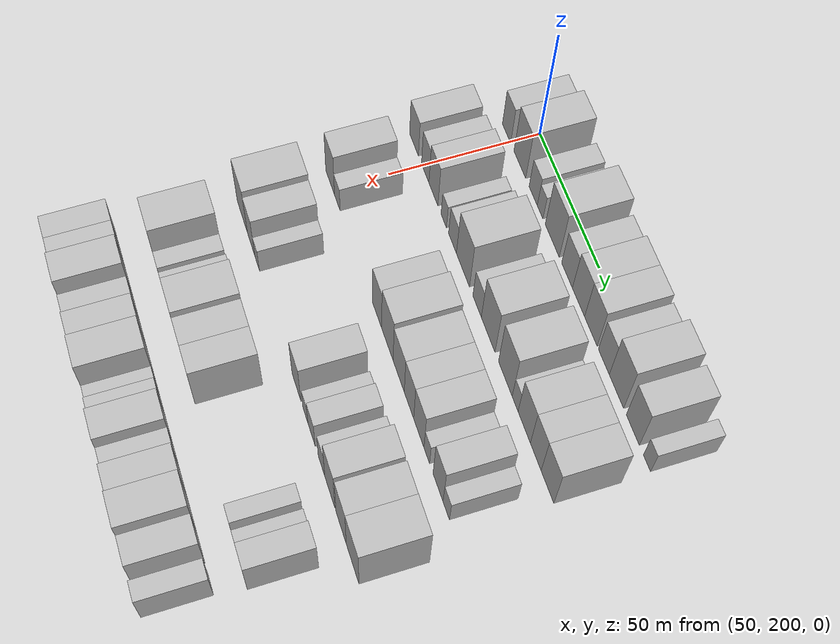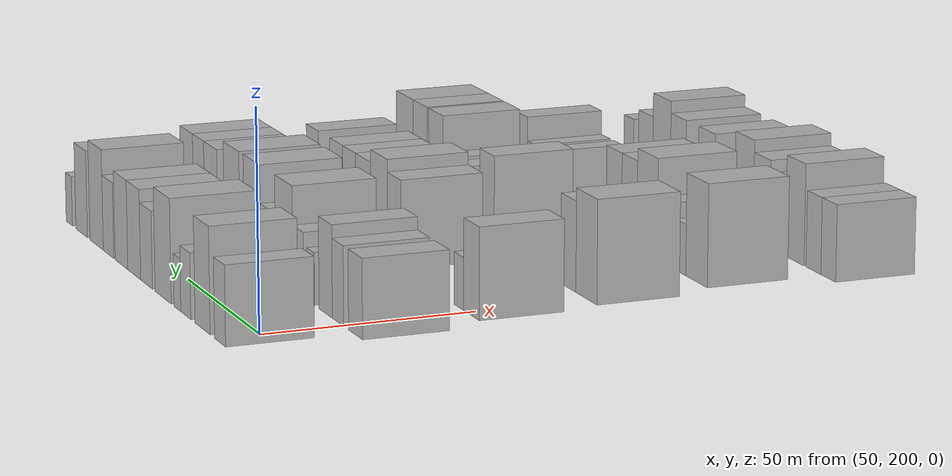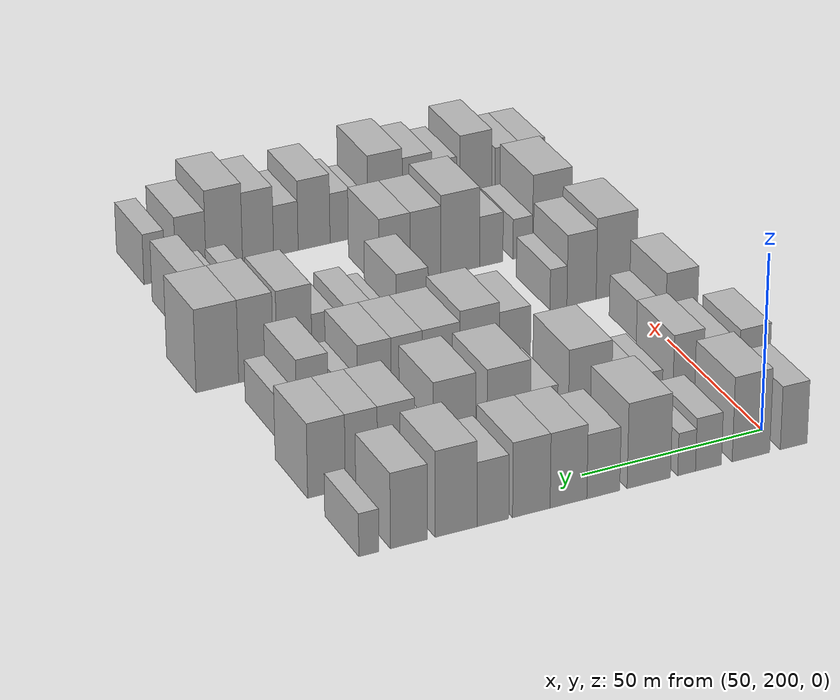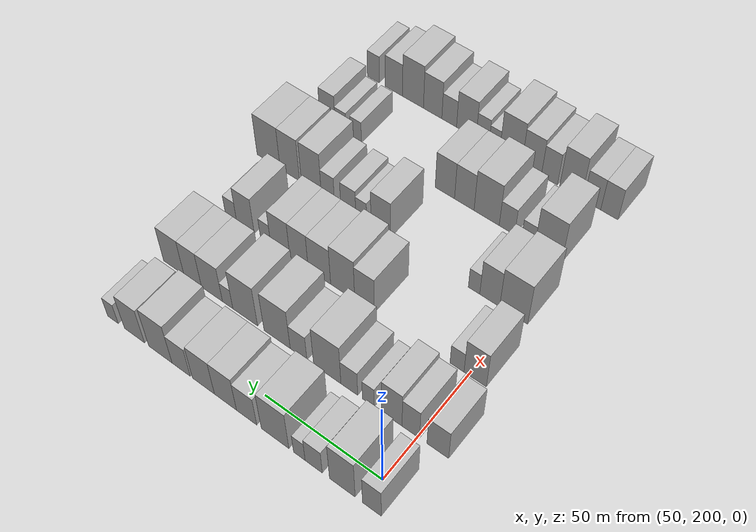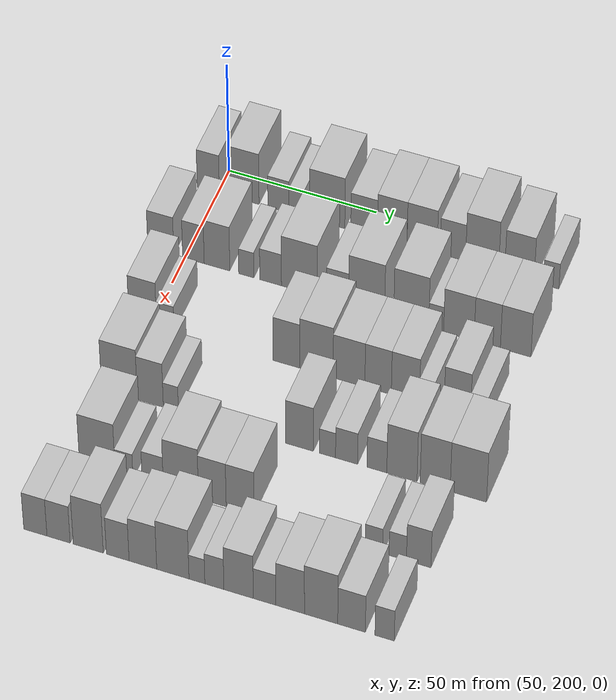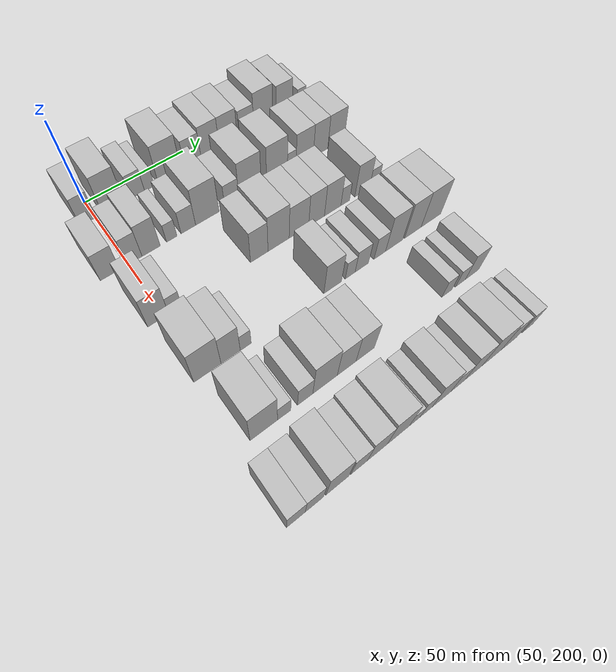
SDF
<sdf version="1.6">
 <world name="default">
  <model name="building_77">
   <static>1</static>
   <pose>50.0000 196.6675 0 0.000000 0.000000 0.000000</pose>
   <link name="link">
    <pose>0 0 9.00 0 0 0</pose>
    <collision name="collision"><geometry><box><size>20.0000 7.5650 18.0000</size></box></geometry></collision>
    <visual name="visual">
     <cast_shadows>0</cast_shadows>
     <geometry><box><size>20.0000 7.5650 18.0000</size></box></geometry>
     <material>
      <script>
       <uri>model://HANNAS_wall/materials/scripts</uri>
       <uri>model://HANNAS_wall/materials/textures</uri>
       <name>vrc/HANNAS_wall</name>
      </script>
     </material>
    </visual>
   </link>
  </model>
  <model name="building_78">
   <static>1</static>
   <pose>50.0000 208.7094 0 0.000000 0.000000 0.000000</pose>
   <link name="link">
    <pose>0 0 12.00 0 0 0</pose>
    <collision name="collision"><geometry><box><size>20.0000 10.5188 24.0000</size></box></geometry></collision>
    <visual name="visual">
     <cast_shadows>0</cast_shadows>
     <geometry><box><size>20.0000 10.5188 24.0000</size></box></geometry>
     <material>
      <script>
       <uri>model://HANNAS_wall/materials/scripts</uri>
       <uri>model://HANNAS_wall/materials/textures</uri>
       <name>vrc/HANNAS_wall</name>
      </script>
     </material>
    </visual>
   </link>
  </model>
  <model name="building_79">
   <static>1</static>
   <pose>50.0000 220.5619 0 0.000000 0.000000 0.000000</pose>
   <link name="link">
    <pose>0 0 7.50 0 0 0</pose>
    <collision name="collision"><geometry><box><size>20.0000 7.1860 15.0000</size></box></geometry></collision>
    <visual name="visual">
     <cast_shadows>0</cast_shadows>
     <geometry><box><size>20.0000 7.1860 15.0000</size></box></geometry>
     <material>
      <script>
       <uri>model://HANNAS_wall/materials/scripts</uri>
       <uri>model://HANNAS_wall/materials/textures</uri>
       <name>vrc/HANNAS_wall</name>
      </script>
     </material>
    </visual>
   </link>
  </model>
  <model name="building_80">
   <static>1</static>
   <pose>50.0000 226.6159 0 0.000000 0.000000 0.000000</pose>
   <link name="link">
    <pose>0 0 6.00 0 0 0</pose>
    <collision name="collision"><geometry><box><size>20.0000 4.9221 12.0000</size></box></geometry></collision>
    <visual name="visual">
     <cast_shadows>0</cast_shadows>
     <geometry><box><size>20.0000 4.9221 12.0000</size></box></geometry>
     <material>
      <script>
       <uri>model://HANNAS_wall/materials/scripts</uri>
       <uri>model://HANNAS_wall/materials/textures</uri>
       <name>vrc/HANNAS_wall</name>
      </script>
     </material>
    </visual>
   </link>
  </model>
  <model name="building_81">
   <static>1</static>
   <pose>50.0000 237.0368 0 0.000000 0.000000 0.000000</pose>
   <link name="link">
    <pose>0 0 12.00 0 0 0</pose>
    <collision name="collision"><geometry><box><size>20.0000 11.9197 24.0000</size></box></geometry></collision>
    <visual name="visual">
     <cast_shadows>0</cast_shadows>
     <geometry><box><size>20.0000 11.9197 24.0000</size></box></geometry>
     <material>
      <script>
       <uri>model://HANNAS_wall/materials/scripts</uri>
       <uri>model://HANNAS_wall/materials/textures</uri>
       <name>vrc/HANNAS_wall</name>
      </script>
     </material>
    </visual>
   </link>
  </model>
  <model name="building_82">
   <static>1</static>
   <pose>50.0000 249.4661 0 0.000000 0.000000 0.000000</pose>
   <link name="link">
    <pose>0 0 9.00 0 0 0</pose>
    <collision name="collision"><geometry><box><size>20.0000 8.9390 18.0000</size></box></geometry></collision>
    <visual name="visual">
     <cast_shadows>0</cast_shadows>
     <geometry><box><size>20.0000 8.9390 18.0000</size></box></geometry>
     <material>
      <script>
       <uri>model://HANNAS_wall/materials/scripts</uri>
       <uri>model://HANNAS_wall/materials/textures</uri>
       <name>vrc/HANNAS_wall</name>
      </script>
     </material>
    </visual>
   </link>
  </model>
  <model name="building_83">
   <static>1</static>
   <pose>50.0000 258.8925 0 0.000000 0.000000 0.000000</pose>
   <link name="link">
    <pose>0 0 10.50 0 0 0</pose>
    <collision name="collision"><geometry><box><size>20.0000 9.9138 21.0000</size></box></geometry></collision>
    <visual name="visual">
     <cast_shadows>0</cast_shadows>
     <geometry><box><size>20.0000 9.9138 21.0000</size></box></geometry>
     <material>
      <script>
       <uri>model://HANNAS_wall/materials/scripts</uri>
       <uri>model://HANNAS_wall/materials/textures</uri>
       <name>vrc/HANNAS_wall</name>
      </script>
     </material>
    </visual>
   </link>
  </model>
  <model name="building_84">
   <static>1</static>
   <pose>50.0000 268.8792 0 0.000000 0.000000 0.000000</pose>
   <link name="link">
    <pose>0 0 10.50 0 0 0</pose>
    <collision name="collision"><geometry><box><size>20.0000 10.0595 21.0000</size></box></geometry></collision>
    <visual name="visual">
     <cast_shadows>0</cast_shadows>
     <geometry><box><size>20.0000 10.0595 21.0000</size></box></geometry>
     <material>
      <script>
       <uri>model://HANNAS_wall/materials/scripts</uri>
       <uri>model://HANNAS_wall/materials/textures</uri>
       <name>vrc/HANNAS_wall</name>
      </script>
     </material>
    </visual>
   </link>
  </model>
  <model name="building_85">
   <static>1</static>
   <pose>50.0000 279.1428 0 0.000000 0.000000 0.000000</pose>
   <link name="link">
    <pose>0 0 9.00 0 0 0</pose>
    <collision name="collision"><geometry><box><size>20.0000 8.4677 18.0000</size></box></geometry></collision>
    <visual name="visual">
     <cast_shadows>0</cast_shadows>
     <geometry><box><size>20.0000 8.4677 18.0000</size></box></geometry>
     <material>
      <script>
       <uri>model://HANNAS_wall/materials/scripts</uri>
       <uri>model://HANNAS_wall/materials/textures</uri>
       <name>vrc/HANNAS_wall</name>
      </script>
     </material>
    </visual>
   </link>
  </model>
  <model name="building_86">
   <static>1</static>
   <pose>50.0000 288.8839 0 0.000000 0.000000 0.000000</pose>
   <link name="link">
    <pose>0 0 12.00 0 0 0</pose>
    <collision name="collision"><geometry><box><size>20.0000 11.0144 24.0000</size></box></geometry></collision>
    <visual name="visual">
     <cast_shadows>0</cast_shadows>
     <geometry><box><size>20.0000 11.0144 24.0000</size></box></geometry>
     <material>
      <script>
       <uri>model://HANNAS_wall/materials/scripts</uri>
       <uri>model://HANNAS_wall/materials/textures</uri>
       <name>vrc/HANNAS_wall</name>
      </script>
     </material>
    </visual>
   </link>
  </model>
  <model name="building_87">
   <static>1</static>
   <pose>50.0000 301.2578 0 0.000000 0.000000 0.000000</pose>
   <link name="link">
    <pose>0 0 10.50 0 0 0</pose>
    <collision name="collision"><geometry><box><size>20.0000 9.7333 21.0000</size></box></geometry></collision>
    <visual name="visual">
     <cast_shadows>0</cast_shadows>
     <geometry><box><size>20.0000 9.7333 21.0000</size></box></geometry>
     <material>
      <script>
       <uri>model://HANNAS_wall/materials/scripts</uri>
       <uri>model://HANNAS_wall/materials/textures</uri>
       <name>vrc/HANNAS_wall</name>
      </script>
     </material>
    </visual>
   </link>
  </model>
  <model name="building_88">
   <static>1</static>
   <pose>50.0000 311.7226 0 0.000000 0.000000 0.000000</pose>
   <link name="link">
    <pose>0 0 6.00 0 0 0</pose>
    <collision name="collision"><geometry><box><size>20.0000 5.1963 12.0000</size></box></geometry></collision>
    <visual name="visual">
     <cast_shadows>0</cast_shadows>
     <geometry><box><size>20.0000 5.1963 12.0000</size></box></geometry>
     <material>
      <script>
       <uri>model://HANNAS_wall/materials/scripts</uri>
       <uri>model://HANNAS_wall/materials/textures</uri>
       <name>vrc/HANNAS_wall</name>
      </script>
     </material>
    </visual>
   </link>
  </model>
  <model name="building_186">
   <static>1</static>
   <pose>79.0000 191.8673 0 0.000000 0.000000 0.000000</pose>
   <link name="link">
    <pose>0 0 9.00 0 0 0</pose>
    <collision name="collision"><geometry><box><size>20.0000 8.7973 18.0000</size></box></geometry></collision>
    <visual name="visual">
     <cast_shadows>0</cast_shadows>
     <geometry><box><size>20.0000 8.7973 18.0000</size></box></geometry>
     <material>
      <script>
       <uri>model://HANNAS_wall/materials/scripts</uri>
       <uri>model://HANNAS_wall/materials/textures</uri>
       <name>vrc/HANNAS_wall</name>
      </script>
     </material>
    </visual>
   </link>
  </model>
  <model name="building_187">
   <static>1</static>
   <pose>79.0000 202.9028 0 0.000000 0.000000 0.000000</pose>
   <link name="link">
    <pose>0 0 9.00 0 0 0</pose>
    <collision name="collision"><geometry><box><size>20.0000 7.2736 18.0000</size></box></geometry></collision>
    <visual name="visual">
     <cast_shadows>0</cast_shadows>
     <geometry><box><size>20.0000 7.2736 18.0000</size></box></geometry>
     <material>
      <script>
       <uri>model://HANNAS_wall/materials/scripts</uri>
       <uri>model://HANNAS_wall/materials/textures</uri>
       <name>vrc/HANNAS_wall</name>
      </script>
     </material>
    </visual>
   </link>
  </model>
  <model name="building_188">
   <static>1</static>
   <pose>79.0000 210.8468 0 0.000000 0.000000 0.000000</pose>
   <link name="link">
    <pose>0 0 10.50 0 0 0</pose>
    <collision name="collision"><geometry><box><size>20.0000 8.6145 21.0000</size></box></geometry></collision>
    <visual name="visual">
     <cast_shadows>0</cast_shadows>
     <geometry><box><size>20.0000 8.6145 21.0000</size></box></geometry>
     <material>
      <script>
       <uri>model://HANNAS_wall/materials/scripts</uri>
       <uri>model://HANNAS_wall/materials/textures</uri>
       <name>vrc/HANNAS_wall</name>
      </script>
     </material>
    </visual>
   </link>
  </model>
  <model name="building_189">
   <static>1</static>
   <pose>79.0000 220.6888 0 0.000000 0.000000 0.000000</pose>
   <link name="link">
    <pose>0 0 6.00 0 0 0</pose>
    <collision name="collision"><geometry><box><size>20.0000 5.0694 12.0000</size></box></geometry></collision>
    <visual name="visual">
     <cast_shadows>0</cast_shadows>
     <geometry><box><size>20.0000 5.0694 12.0000</size></box></geometry>
     <material>
      <script>
       <uri>model://HANNAS_wall/materials/scripts</uri>
       <uri>model://HANNAS_wall/materials/textures</uri>
       <name>vrc/HANNAS_wall</name>
      </script>
     </material>
    </visual>
   </link>
  </model>
  <model name="building_190">
   <static>1</static>
   <pose>79.0000 228.8484 0 0.000000 0.000000 0.000000</pose>
   <link name="link">
    <pose>0 0 7.50 0 0 0</pose>
    <collision name="collision"><geometry><box><size>20.0000 7.2498 15.0000</size></box></geometry></collision>
    <visual name="visual">
     <cast_shadows>0</cast_shadows>
     <geometry><box><size>20.0000 7.2498 15.0000</size></box></geometry>
     <material>
      <script>
       <uri>model://HANNAS_wall/materials/scripts</uri>
       <uri>model://HANNAS_wall/materials/textures</uri>
       <name>vrc/HANNAS_wall</name>
      </script>
     </material>
    </visual>
   </link>
  </model>
  <model name="building_191">
   <static>1</static>
   <pose>79.0000 238.4429 0 0.000000 0.000000 0.000000</pose>
   <link name="link">
    <pose>0 0 12.00 0 0 0</pose>
    <collision name="collision"><geometry><box><size>20.0000 11.9392 24.0000</size></box></geometry></collision>
    <visual name="visual">
     <cast_shadows>0</cast_shadows>
     <geometry><box><size>20.0000 11.9392 24.0000</size></box></geometry>
     <material>
      <script>
       <uri>model://HANNAS_wall/materials/scripts</uri>
       <uri>model://HANNAS_wall/materials/textures</uri>
       <name>vrc/HANNAS_wall</name>
      </script>
     </material>
    </visual>
   </link>
  </model>
  <model name="building_192">
   <static>1</static>
   <pose>79.0000 251.1558 0 0.000000 0.000000 0.000000</pose>
   <link name="link">
    <pose>0 0 7.50 0 0 0</pose>
    <collision name="collision"><geometry><box><size>20.0000 7.4865 15.0000</size></box></geometry></collision>
    <visual name="visual">
     <cast_shadows>0</cast_shadows>
     <geometry><box><size>20.0000 7.4865 15.0000</size></box></geometry>
     <material>
      <script>
       <uri>model://HANNAS_wall/materials/scripts</uri>
       <uri>model://HANNAS_wall/materials/textures</uri>
       <name>vrc/HANNAS_wall</name>
      </script>
     </material>
    </visual>
   </link>
  </model>
  <model name="building_193">
   <static>1</static>
   <pose>79.0000 260.8549 0 0.000000 0.000000 0.000000</pose>
   <link name="link">
    <pose>0 0 12.00 0 0 0</pose>
    <collision name="collision"><geometry><box><size>20.0000 11.9118 24.0000</size></box></geometry></collision>
    <visual name="visual">
     <cast_shadows>0</cast_shadows>
     <geometry><box><size>20.0000 11.9118 24.0000</size></box></geometry>
     <material>
      <script>
       <uri>model://HANNAS_wall/materials/scripts</uri>
       <uri>model://HANNAS_wall/materials/textures</uri>
       <name>vrc/HANNAS_wall</name>
      </script>
     </material>
    </visual>
   </link>
  </model>
  <model name="building_194">
   <static>1</static>
   <pose>79.0000 275.5771 0 0.000000 0.000000 0.000000</pose>
   <link name="link">
    <pose>0 0 12.00 0 0 0</pose>
    <collision name="collision"><geometry><box><size>20.0000 11.5325 24.0000</size></box></geometry></collision>
    <visual name="visual">
     <cast_shadows>0</cast_shadows>
     <geometry><box><size>20.0000 11.5325 24.0000</size></box></geometry>
     <material>
      <script>
       <uri>model://HANNAS_wall/materials/scripts</uri>
       <uri>model://HANNAS_wall/materials/textures</uri>
       <name>vrc/HANNAS_wall</name>
      </script>
     </material>
    </visual>
   </link>
  </model>
  <model name="building_195">
   <static>1</static>
   <pose>79.0000 283.7994 0 0.000000 0.000000 0.000000</pose>
   <link name="link">
    <pose>0 0 6.00 0 0 0</pose>
    <collision name="collision"><geometry><box><size>20.0000 4.9121 12.0000</size></box></geometry></collision>
    <visual name="visual">
     <cast_shadows>0</cast_shadows>
     <geometry><box><size>20.0000 4.9121 12.0000</size></box></geometry>
     <material>
      <script>
       <uri>model://HANNAS_wall/materials/scripts</uri>
       <uri>model://HANNAS_wall/materials/textures</uri>
       <name>vrc/HANNAS_wall</name>
      </script>
     </material>
    </visual>
   </link>
  </model>
  <model name="building_196">
   <static>1</static>
   <pose>79.0000 291.2741 0 0.000000 0.000000 0.000000</pose>
   <link name="link">
    <pose>0 0 10.50 0 0 0</pose>
    <collision name="collision"><geometry><box><size>20.0000 10.0374 21.0000</size></box></geometry></collision>
    <visual name="visual">
     <cast_shadows>0</cast_shadows>
     <geometry><box><size>20.0000 10.0374 21.0000</size></box></geometry>
     <material>
      <script>
       <uri>model://HANNAS_wall/materials/scripts</uri>
       <uri>model://HANNAS_wall/materials/textures</uri>
       <name>vrc/HANNAS_wall</name>
      </script>
     </material>
    </visual>
   </link>
  </model>
  <model name="building_197">
   <static>1</static>
   <pose>79.0000 300.5953 0 0.000000 0.000000 0.000000</pose>
   <link name="link">
    <pose>0 0 10.50 0 0 0</pose>
    <collision name="collision"><geometry><box><size>20.0000 8.6050 21.0000</size></box></geometry></collision>
    <visual name="visual">
     <cast_shadows>0</cast_shadows>
     <geometry><box><size>20.0000 8.6050 21.0000</size></box></geometry>
     <material>
      <script>
       <uri>model://HANNAS_wall/materials/scripts</uri>
       <uri>model://HANNAS_wall/materials/textures</uri>
       <name>vrc/HANNAS_wall</name>
      </script>
     </material>
    </visual>
   </link>
  </model>
  <model name="building_198">
   <static>1</static>
   <pose>79.0000 309.8925 0 0.000000 0.000000 0.000000</pose>
   <link name="link">
    <pose>0 0 10.50 0 0 0</pose>
    <collision name="collision"><geometry><box><size>20.0000 9.9894 21.0000</size></box></geometry></collision>
    <visual name="visual">
     <cast_shadows>0</cast_shadows>
     <geometry><box><size>20.0000 9.9894 21.0000</size></box></geometry>
     <material>
      <script>
       <uri>model://HANNAS_wall/materials/scripts</uri>
       <uri>model://HANNAS_wall/materials/textures</uri>
       <name>vrc/HANNAS_wall</name>
      </script>
     </material>
    </visual>
   </link>
  </model>
  <model name="building_302">
   <static>1</static>
   <pose>108.0000 197.2873 0 0.000000 0.000000 0.000000</pose>
   <link name="link">
    <pose>0 0 10.50 0 0 0</pose>
    <collision name="collision"><geometry><box><size>20.0000 9.2643 21.0000</size></box></geometry></collision>
    <visual name="visual">
     <cast_shadows>0</cast_shadows>
     <geometry><box><size>20.0000 9.2643 21.0000</size></box></geometry>
     <material>
      <script>
       <uri>model://HANNAS_wall/materials/scripts</uri>
       <uri>model://HANNAS_wall/materials/textures</uri>
       <name>vrc/HANNAS_wall</name>
      </script>
     </material>
    </visual>
   </link>
  </model>
  <model name="building_303">
   <static>1</static>
   <pose>108.0000 204.8573 0 0.000000 0.000000 0.000000</pose>
   <link name="link">
    <pose>0 0 6.00 0 0 0</pose>
    <collision name="collision"><geometry><box><size>20.0000 5.8758 12.0000</size></box></geometry></collision>
    <visual name="visual">
     <cast_shadows>0</cast_shadows>
     <geometry><box><size>20.0000 5.8758 12.0000</size></box></geometry>
     <material>
      <script>
       <uri>model://HANNAS_wall/materials/scripts</uri>
       <uri>model://HANNAS_wall/materials/textures</uri>
       <name>vrc/HANNAS_wall</name>
      </script>
     </material>
    </visual>
   </link>
  </model>
  <model name="building_304">
   <static>1</static>
   <pose>108.0000 245.0341 0 0.000000 0.000000 0.000000</pose>
   <link name="link">
    <pose>0 0 10.50 0 0 0</pose>
    <collision name="collision"><geometry><box><size>20.0000 8.8259 21.0000</size></box></geometry></collision>
    <visual name="visual">
     <cast_shadows>0</cast_shadows>
     <geometry><box><size>20.0000 8.8259 21.0000</size></box></geometry>
     <material>
      <script>
       <uri>model://HANNAS_wall/materials/scripts</uri>
       <uri>model://HANNAS_wall/materials/textures</uri>
       <name>vrc/HANNAS_wall</name>
      </script>
     </material>
    </visual>
   </link>
  </model>
  <model name="building_305">
   <static>1</static>
   <pose>108.0000 254.9267 0 0.000000 0.000000 0.000000</pose>
   <link name="link">
    <pose>0 0 12.00 0 0 0</pose>
    <collision name="collision"><geometry><box><size>20.0000 10.9592 24.0000</size></box></geometry></collision>
    <visual name="visual">
     <cast_shadows>0</cast_shadows>
     <geometry><box><size>20.0000 10.9592 24.0000</size></box></geometry>
     <material>
      <script>
       <uri>model://HANNAS_wall/materials/scripts</uri>
       <uri>model://HANNAS_wall/materials/textures</uri>
       <name>vrc/HANNAS_wall</name>
      </script>
     </material>
    </visual>
   </link>
  </model>
  <model name="building_306">
   <static>1</static>
   <pose>108.0000 265.6005 0 0.000000 0.000000 0.000000</pose>
   <link name="link">
    <pose>0 0 10.50 0 0 0</pose>
    <collision name="collision"><geometry><box><size>20.0000 10.3884 21.0000</size></box></geometry></collision>
    <visual name="visual">
     <cast_shadows>0</cast_shadows>
     <geometry><box><size>20.0000 10.3884 21.0000</size></box></geometry>
     <material>
      <script>
       <uri>model://HANNAS_wall/materials/scripts</uri>
       <uri>model://HANNAS_wall/materials/textures</uri>
       <name>vrc/HANNAS_wall</name>
      </script>
     </material>
    </visual>
   </link>
  </model>
  <model name="building_307">
   <static>1</static>
   <pose>108.0000 275.1124 0 0.000000 0.000000 0.000000</pose>
   <link name="link">
    <pose>0 0 10.50 0 0 0</pose>
    <collision name="collision"><geometry><box><size>20.0000 8.6356 21.0000</size></box></geometry></collision>
    <visual name="visual">
     <cast_shadows>0</cast_shadows>
     <geometry><box><size>20.0000 8.6356 21.0000</size></box></geometry>
     <material>
      <script>
       <uri>model://HANNAS_wall/materials/scripts</uri>
       <uri>model://HANNAS_wall/materials/textures</uri>
       <name>vrc/HANNAS_wall</name>
      </script>
     </material>
    </visual>
   </link>
  </model>
  <model name="building_308">
   <static>1</static>
   <pose>108.0000 284.0122 0 0.000000 0.000000 0.000000</pose>
   <link name="link">
    <pose>0 0 10.50 0 0 0</pose>
    <collision name="collision"><geometry><box><size>20.0000 9.1639 21.0000</size></box></geometry></collision>
    <visual name="visual">
     <cast_shadows>0</cast_shadows>
     <geometry><box><size>20.0000 9.1639 21.0000</size></box></geometry>
     <material>
      <script>
       <uri>model://HANNAS_wall/materials/scripts</uri>
       <uri>model://HANNAS_wall/materials/textures</uri>
       <name>vrc/HANNAS_wall</name>
      </script>
     </material>
    </visual>
   </link>
  </model>
  <model name="building_309">
   <static>1</static>
   <pose>108.0000 291.0864 0 0.000000 0.000000 0.000000</pose>
   <link name="link">
    <pose>0 0 6.00 0 0 0</pose>
    <collision name="collision"><geometry><box><size>20.0000 4.9846 12.0000</size></box></geometry></collision>
    <visual name="visual">
     <cast_shadows>0</cast_shadows>
     <geometry><box><size>20.0000 4.9846 12.0000</size></box></geometry>
     <material>
      <script>
       <uri>model://HANNAS_wall/materials/scripts</uri>
       <uri>model://HANNAS_wall/materials/textures</uri>
       <name>vrc/HANNAS_wall</name>
      </script>
     </material>
    </visual>
   </link>
  </model>
  <model name="building_310">
   <static>1</static>
   <pose>108.0000 300.8844 0 0.000000 0.000000 0.000000</pose>
   <link name="link">
    <pose>0 0 10.50 0 0 0</pose>
    <collision name="collision"><geometry><box><size>20.0000 8.6115 21.0000</size></box></geometry></collision>
    <visual name="visual">
     <cast_shadows>0</cast_shadows>
     <geometry><box><size>20.0000 8.6115 21.0000</size></box></geometry>
     <material>
      <script>
       <uri>model://HANNAS_wall/materials/scripts</uri>
       <uri>model://HANNAS_wall/materials/textures</uri>
       <name>vrc/HANNAS_wall</name>
      </script>
     </material>
    </visual>
   </link>
  </model>
  <model name="building_311">
   <static>1</static>
   <pose>108.0000 307.9476 0 0.000000 0.000000 0.000000</pose>
   <link name="link">
    <pose>0 0 6.00 0 0 0</pose>
    <collision name="collision"><geometry><box><size>20.0000 5.5149 12.0000</size></box></geometry></collision>
    <visual name="visual">
     <cast_shadows>0</cast_shadows>
     <geometry><box><size>20.0000 5.5149 12.0000</size></box></geometry>
     <material>
      <script>
       <uri>model://HANNAS_wall/materials/scripts</uri>
       <uri>model://HANNAS_wall/materials/textures</uri>
       <name>vrc/HANNAS_wall</name>
      </script>
     </material>
    </visual>
   </link>
  </model>
  <model name="building_414">
   <static>1</static>
   <pose>137.0000 201.0988 0 0.000000 0.000000 0.000000</pose>
   <link name="link">
    <pose>0 0 12.00 0 0 0</pose>
    <collision name="collision"><geometry><box><size>20.0000 11.8479 24.0000</size></box></geometry></collision>
    <visual name="visual">
     <cast_shadows>0</cast_shadows>
     <geometry><box><size>20.0000 11.8479 24.0000</size></box></geometry>
     <material>
      <script>
       <uri>model://HANNAS_wall/materials/scripts</uri>
       <uri>model://HANNAS_wall/materials/textures</uri>
       <name>vrc/HANNAS_wall</name>
      </script>
     </material>
    </visual>
   </link>
  </model>
  <model name="building_415">
   <static>1</static>
   <pose>137.0000 211.3151 0 0.000000 0.000000 0.000000</pose>
   <link name="link">
    <pose>0 0 10.50 0 0 0</pose>
    <collision name="collision"><geometry><box><size>20.0000 8.5848 21.0000</size></box></geometry></collision>
    <visual name="visual">
     <cast_shadows>0</cast_shadows>
     <geometry><box><size>20.0000 8.5848 21.0000</size></box></geometry>
     <material>
      <script>
       <uri>model://HANNAS_wall/materials/scripts</uri>
       <uri>model://HANNAS_wall/materials/textures</uri>
       <name>vrc/HANNAS_wall</name>
      </script>
     </material>
    </visual>
   </link>
  </model>
  <model name="building_416">
   <static>1</static>
   <pose>137.0000 218.0904 0 0.000000 0.000000 0.000000</pose>
   <link name="link">
    <pose>0 0 6.00 0 0 0</pose>
    <collision name="collision"><geometry><box><size>20.0000 4.9657 12.0000</size></box></geometry></collision>
    <visual name="visual">
     <cast_shadows>0</cast_shadows>
     <geometry><box><size>20.0000 4.9657 12.0000</size></box></geometry>
     <material>
      <script>
       <uri>model://HANNAS_wall/materials/scripts</uri>
       <uri>model://HANNAS_wall/materials/textures</uri>
       <name>vrc/HANNAS_wall</name>
      </script>
     </material>
    </visual>
   </link>
  </model>
  <model name="building_417">
   <static>1</static>
   <pose>137.0000 260.1597 0 0.000000 0.000000 0.000000</pose>
   <link name="link">
    <pose>0 0 10.50 0 0 0</pose>
    <collision name="collision"><geometry><box><size>20.0000 9.0576 21.0000</size></box></geometry></collision>
    <visual name="visual">
     <cast_shadows>0</cast_shadows>
     <geometry><box><size>20.0000 9.0576 21.0000</size></box></geometry>
     <material>
      <script>
       <uri>model://HANNAS_wall/materials/scripts</uri>
       <uri>model://HANNAS_wall/materials/textures</uri>
       <name>vrc/HANNAS_wall</name>
      </script>
     </material>
    </visual>
   </link>
  </model>
  <model name="building_418">
   <static>1</static>
   <pose>137.0000 269.2691 0 0.000000 0.000000 0.000000</pose>
   <link name="link">
    <pose>0 0 6.00 0 0 0</pose>
    <collision name="collision"><geometry><box><size>20.0000 5.1611 12.0000</size></box></geometry></collision>
    <visual name="visual">
     <cast_shadows>0</cast_shadows>
     <geometry><box><size>20.0000 5.1611 12.0000</size></box></geometry>
     <material>
      <script>
       <uri>model://HANNAS_wall/materials/scripts</uri>
       <uri>model://HANNAS_wall/materials/textures</uri>
       <name>vrc/HANNAS_wall</name>
      </script>
     </material>
    </visual>
   </link>
  </model>
  <model name="building_419">
   <static>1</static>
   <pose>137.0000 275.4304 0 0.000000 0.000000 0.000000</pose>
   <link name="link">
    <pose>0 0 7.50 0 0 0</pose>
    <collision name="collision"><geometry><box><size>20.0000 7.1615 15.0000</size></box></geometry></collision>
    <visual name="visual">
     <cast_shadows>0</cast_shadows>
     <geometry><box><size>20.0000 7.1615 15.0000</size></box></geometry>
     <material>
      <script>
       <uri>model://HANNAS_wall/materials/scripts</uri>
       <uri>model://HANNAS_wall/materials/textures</uri>
       <name>vrc/HANNAS_wall</name>
      </script>
     </material>
    </visual>
   </link>
  </model>
  <model name="building_420">
   <static>1</static>
   <pose>137.0000 285.2051 0 0.000000 0.000000 0.000000</pose>
   <link name="link">
    <pose>0 0 7.50 0 0 0</pose>
    <collision name="collision"><geometry><box><size>20.0000 6.3879 15.0000</size></box></geometry></collision>
    <visual name="visual">
     <cast_shadows>0</cast_shadows>
     <geometry><box><size>20.0000 6.3879 15.0000</size></box></geometry>
     <material>
      <script>
       <uri>model://HANNAS_wall/materials/scripts</uri>
       <uri>model://HANNAS_wall/materials/textures</uri>
       <name>vrc/HANNAS_wall</name>
      </script>
     </material>
    </visual>
   </link>
  </model>
  <model name="building_421">
   <static>1</static>
   <pose>137.0000 293.2575 0 0.000000 0.000000 0.000000</pose>
   <link name="link">
    <pose>0 0 12.00 0 0 0</pose>
    <collision name="collision"><geometry><box><size>20.0000 9.7169 24.0000</size></box></geometry></collision>
    <visual name="visual">
     <cast_shadows>0</cast_shadows>
     <geometry><box><size>20.0000 9.7169 24.0000</size></box></geometry>
     <material>
      <script>
       <uri>model://HANNAS_wall/materials/scripts</uri>
       <uri>model://HANNAS_wall/materials/textures</uri>
       <name>vrc/HANNAS_wall</name>
      </script>
     </material>
    </visual>
   </link>
  </model>
  <model name="building_422">
   <static>1</static>
   <pose>137.0000 303.9200 0 0.000000 0.000000 0.000000</pose>
   <link name="link">
    <pose>0 0 12.00 0 0 0</pose>
    <collision name="collision"><geometry><box><size>20.0000 9.6080 24.0000</size></box></geometry></collision>
    <visual name="visual">
     <cast_shadows>0</cast_shadows>
     <geometry><box><size>20.0000 9.6080 24.0000</size></box></geometry>
     <material>
      <script>
       <uri>model://HANNAS_wall/materials/scripts</uri>
       <uri>model://HANNAS_wall/materials/textures</uri>
       <name>vrc/HANNAS_wall</name>
      </script>
     </material>
    </visual>
   </link>
  </model>
  <model name="building_423">
   <static>1</static>
   <pose>137.0000 314.5511 0 0.000000 0.000000 0.000000</pose>
   <link name="link">
    <pose>0 0 12.00 0 0 0</pose>
    <collision name="collision"><geometry><box><size>20.0000 11.6543 24.0000</size></box></geometry></collision>
    <visual name="visual">
     <cast_shadows>0</cast_shadows>
     <geometry><box><size>20.0000 11.6543 24.0000</size></box></geometry>
     <material>
      <script>
       <uri>model://HANNAS_wall/materials/scripts</uri>
       <uri>model://HANNAS_wall/materials/textures</uri>
       <name>vrc/HANNAS_wall</name>
      </script>
     </material>
    </visual>
   </link>
  </model>
  <model name="building_526">
   <static>1</static>
   <pose>166.0000 205.5373 0 0.000000 0.000000 0.000000</pose>
   <link name="link">
    <pose>0 0 12.00 0 0 0</pose>
    <collision name="collision"><geometry><box><size>20.0000 11.6668 24.0000</size></box></geometry></collision>
    <visual name="visual">
     <cast_shadows>0</cast_shadows>
     <geometry><box><size>20.0000 11.6668 24.0000</size></box></geometry>
     <material>
      <script>
       <uri>model://HANNAS_wall/materials/scripts</uri>
       <uri>model://HANNAS_wall/materials/textures</uri>
       <name>vrc/HANNAS_wall</name>
      </script>
     </material>
    </visual>
   </link>
  </model>
  <model name="building_527">
   <static>1</static>
   <pose>166.0000 214.2726 0 0.000000 0.000000 0.000000</pose>
   <link name="link">
    <pose>0 0 6.00 0 0 0</pose>
    <collision name="collision"><geometry><box><size>20.0000 5.8038 12.0000</size></box></geometry></collision>
    <visual name="visual">
     <cast_shadows>0</cast_shadows>
     <geometry><box><size>20.0000 5.8038 12.0000</size></box></geometry>
     <material>
      <script>
       <uri>model://HANNAS_wall/materials/scripts</uri>
       <uri>model://HANNAS_wall/materials/textures</uri>
       <name>vrc/HANNAS_wall</name>
      </script>
     </material>
    </visual>
   </link>
  </model>
  <model name="building_528">
   <static>1</static>
   <pose>166.0000 223.6195 0 0.000000 0.000000 0.000000</pose>
   <link name="link">
    <pose>0 0 7.50 0 0 0</pose>
    <collision name="collision"><geometry><box><size>20.0000 6.8901 15.0000</size></box></geometry></collision>
    <visual name="visual">
     <cast_shadows>0</cast_shadows>
     <geometry><box><size>20.0000 6.8901 15.0000</size></box></geometry>
     <material>
      <script>
       <uri>model://HANNAS_wall/materials/scripts</uri>
       <uri>model://HANNAS_wall/materials/textures</uri>
       <name>vrc/HANNAS_wall</name>
      </script>
     </material>
    </visual>
   </link>
  </model>
  <model name="building_529">
   <static>1</static>
   <pose>166.0000 232.7577 0 0.000000 0.000000 0.000000</pose>
   <link name="link">
    <pose>0 0 12.00 0 0 0</pose>
    <collision name="collision"><geometry><box><size>20.0000 11.3863 24.0000</size></box></geometry></collision>
    <visual name="visual">
     <cast_shadows>0</cast_shadows>
     <geometry><box><size>20.0000 11.3863 24.0000</size></box></geometry>
     <material>
      <script>
       <uri>model://HANNAS_wall/materials/scripts</uri>
       <uri>model://HANNAS_wall/materials/textures</uri>
       <name>vrc/HANNAS_wall</name>
      </script>
     </material>
    </visual>
   </link>
  </model>
  <model name="building_530">
   <static>1</static>
   <pose>166.0000 242.9270 0 0.000000 0.000000 0.000000</pose>
   <link name="link">
    <pose>0 0 10.50 0 0 0</pose>
    <collision name="collision"><geometry><box><size>20.0000 8.9524 21.0000</size></box></geometry></collision>
    <visual name="visual">
     <cast_shadows>0</cast_shadows>
     <geometry><box><size>20.0000 8.9524 21.0000</size></box></geometry>
     <material>
      <script>
       <uri>model://HANNAS_wall/materials/scripts</uri>
       <uri>model://HANNAS_wall/materials/textures</uri>
       <name>vrc/HANNAS_wall</name>
      </script>
     </material>
    </visual>
   </link>
  </model>
  <model name="building_531">
   <static>1</static>
   <pose>166.0000 251.9054 0 0.000000 0.000000 0.000000</pose>
   <link name="link">
    <pose>0 0 10.50 0 0 0</pose>
    <collision name="collision"><geometry><box><size>20.0000 9.0044 21.0000</size></box></geometry></collision>
    <visual name="visual">
     <cast_shadows>0</cast_shadows>
     <geometry><box><size>20.0000 9.0044 21.0000</size></box></geometry>
     <material>
      <script>
       <uri>model://HANNAS_wall/materials/scripts</uri>
       <uri>model://HANNAS_wall/materials/textures</uri>
       <name>vrc/HANNAS_wall</name>
      </script>
     </material>
    </visual>
   </link>
  </model>
  <model name="building_532">
   <static>1</static>
   <pose>166.0000 294.7436 0 0.000000 0.000000 0.000000</pose>
   <link name="link">
    <pose>0 0 6.00 0 0 0</pose>
    <collision name="collision"><geometry><box><size>20.0000 5.5574 12.0000</size></box></geometry></collision>
    <visual name="visual">
     <cast_shadows>0</cast_shadows>
     <geometry><box><size>20.0000 5.5574 12.0000</size></box></geometry>
     <material>
      <script>
       <uri>model://HANNAS_wall/materials/scripts</uri>
       <uri>model://HANNAS_wall/materials/textures</uri>
       <name>vrc/HANNAS_wall</name>
      </script>
     </material>
    </visual>
   </link>
  </model>
  <model name="building_533">
   <static>1</static>
   <pose>166.0000 302.2970 0 0.000000 0.000000 0.000000</pose>
   <link name="link">
    <pose>0 0 6.00 0 0 0</pose>
    <collision name="collision"><geometry><box><size>20.0000 5.5495 12.0000</size></box></geometry></collision>
    <visual name="visual">
     <cast_shadows>0</cast_shadows>
     <geometry><box><size>20.0000 5.5495 12.0000</size></box></geometry>
     <material>
      <script>
       <uri>model://HANNAS_wall/materials/scripts</uri>
       <uri>model://HANNAS_wall/materials/textures</uri>
       <name>vrc/HANNAS_wall</name>
      </script>
     </material>
    </visual>
   </link>
  </model>
  <model name="building_534">
   <static>1</static>
   <pose>166.0000 308.9526 0 0.000000 0.000000 0.000000</pose>
   <link name="link">
    <pose>0 0 9.00 0 0 0</pose>
    <collision name="collision"><geometry><box><size>20.0000 7.7616 18.0000</size></box></geometry></collision>
    <visual name="visual">
     <cast_shadows>0</cast_shadows>
     <geometry><box><size>20.0000 7.7616 18.0000</size></box></geometry>
     <material>
      <script>
       <uri>model://HANNAS_wall/materials/scripts</uri>
       <uri>model://HANNAS_wall/materials/textures</uri>
       <name>vrc/HANNAS_wall</name>
      </script>
     </material>
    </visual>
   </link>
  </model>
  <model name="building_643">
   <static>1</static>
   <pose>195.0000 197.2203 0 0.000000 0.000000 0.000000</pose>
   <link name="link">
    <pose>0 0 9.00 0 0 0</pose>
    <collision name="collision"><geometry><box><size>20.0000 7.5156 18.0000</size></box></geometry></collision>
    <visual name="visual">
     <cast_shadows>0</cast_shadows>
     <geometry><box><size>20.0000 7.5156 18.0000</size></box></geometry>
     <material>
      <script>
       <uri>model://HANNAS_wall/materials/scripts</uri>
       <uri>model://HANNAS_wall/materials/textures</uri>
       <name>vrc/HANNAS_wall</name>
      </script>
     </material>
    </visual>
   </link>
  </model>
  <model name="building_644">
   <static>1</static>
   <pose>195.0000 204.7338 0 0.000000 0.000000 0.000000</pose>
   <link name="link">
    <pose>0 0 9.00 0 0 0</pose>
    <collision name="collision"><geometry><box><size>20.0000 7.5114 18.0000</size></box></geometry></collision>
    <visual name="visual">
     <cast_shadows>0</cast_shadows>
     <geometry><box><size>20.0000 7.5114 18.0000</size></box></geometry>
     <material>
      <script>
       <uri>model://HANNAS_wall/materials/scripts</uri>
       <uri>model://HANNAS_wall/materials/textures</uri>
       <name>vrc/HANNAS_wall</name>
      </script>
     </material>
    </visual>
   </link>
  </model>
  <model name="building_645">
   <static>1</static>
   <pose>195.0000 214.3378 0 0.000000 0.000000 0.000000</pose>
   <link name="link">
    <pose>0 0 12.00 0 0 0</pose>
    <collision name="collision"><geometry><box><size>20.0000 9.6967 24.0000</size></box></geometry></collision>
    <visual name="visual">
     <cast_shadows>0</cast_shadows>
     <geometry><box><size>20.0000 9.6967 24.0000</size></box></geometry>
     <material>
      <script>
       <uri>model://HANNAS_wall/materials/scripts</uri>
       <uri>model://HANNAS_wall/materials/textures</uri>
       <name>vrc/HANNAS_wall</name>
      </script>
     </material>
    </visual>
   </link>
  </model>
  <model name="building_646">
   <static>1</static>
   <pose>195.0000 223.8362 0 0.000000 0.000000 0.000000</pose>
   <link name="link">
    <pose>0 0 9.00 0 0 0</pose>
    <collision name="collision"><geometry><box><size>20.0000 7.3001 18.0000</size></box></geometry></collision>
    <visual name="visual">
     <cast_shadows>0</cast_shadows>
     <geometry><box><size>20.0000 7.3001 18.0000</size></box></geometry>
     <material>
      <script>
       <uri>model://HANNAS_wall/materials/scripts</uri>
       <uri>model://HANNAS_wall/materials/textures</uri>
       <name>vrc/HANNAS_wall</name>
      </script>
     </material>
    </visual>
   </link>
  </model>
  <model name="building_647">
   <static>1</static>
   <pose>195.0000 231.9300 0 0.000000 0.000000 0.000000</pose>
   <link name="link">
    <pose>0 0 10.50 0 0 0</pose>
    <collision name="collision"><geometry><box><size>20.0000 8.8874 21.0000</size></box></geometry></collision>
    <visual name="visual">
     <cast_shadows>0</cast_shadows>
     <geometry><box><size>20.0000 8.8874 21.0000</size></box></geometry>
     <material>
      <script>
       <uri>model://HANNAS_wall/materials/scripts</uri>
       <uri>model://HANNAS_wall/materials/textures</uri>
       <name>vrc/HANNAS_wall</name>
      </script>
     </material>
    </visual>
   </link>
  </model>
  <model name="building_648">
   <static>1</static>
   <pose>195.0000 241.5356 0 0.000000 0.000000 0.000000</pose>
   <link name="link">
    <pose>0 0 12.00 0 0 0</pose>
    <collision name="collision"><geometry><box><size>20.0000 10.3239 24.0000</size></box></geometry></collision>
    <visual name="visual">
     <cast_shadows>0</cast_shadows>
     <geometry><box><size>20.0000 10.3239 24.0000</size></box></geometry>
     <material>
      <script>
       <uri>model://HANNAS_wall/materials/scripts</uri>
       <uri>model://HANNAS_wall/materials/textures</uri>
       <name>vrc/HANNAS_wall</name>
      </script>
     </material>
    </visual>
   </link>
  </model>
  <model name="building_649">
   <static>1</static>
   <pose>195.0000 249.2269 0 0.000000 0.000000 0.000000</pose>
   <link name="link">
    <pose>0 0 6.00 0 0 0</pose>
    <collision name="collision"><geometry><box><size>20.0000 5.0586 12.0000</size></box></geometry></collision>
    <visual name="visual">
     <cast_shadows>0</cast_shadows>
     <geometry><box><size>20.0000 5.0586 12.0000</size></box></geometry>
     <material>
      <script>
       <uri>model://HANNAS_wall/materials/scripts</uri>
       <uri>model://HANNAS_wall/materials/textures</uri>
       <name>vrc/HANNAS_wall</name>
      </script>
     </material>
    </visual>
   </link>
  </model>
  <model name="building_650">
   <static>1</static>
   <pose>195.0000 254.7929 0 0.000000 0.000000 0.000000</pose>
   <link name="link">
    <pose>0 0 7.50 0 0 0</pose>
    <collision name="collision"><geometry><box><size>20.0000 6.0735 15.0000</size></box></geometry></collision>
    <visual name="visual">
     <cast_shadows>0</cast_shadows>
     <geometry><box><size>20.0000 6.0735 15.0000</size></box></geometry>
     <material>
      <script>
       <uri>model://HANNAS_wall/materials/scripts</uri>
       <uri>model://HANNAS_wall/materials/textures</uri>
       <name>vrc/HANNAS_wall</name>
      </script>
     </material>
    </visual>
   </link>
  </model>
  <model name="building_651">
   <static>1</static>
   <pose>195.0000 262.5098 0 0.000000 0.000000 0.000000</pose>
   <link name="link">
    <pose>0 0 10.50 0 0 0</pose>
    <collision name="collision"><geometry><box><size>20.0000 9.3602 21.0000</size></box></geometry></collision>
    <visual name="visual">
     <cast_shadows>0</cast_shadows>
     <geometry><box><size>20.0000 9.3602 21.0000</size></box></geometry>
     <material>
      <script>
       <uri>model://HANNAS_wall/materials/scripts</uri>
       <uri>model://HANNAS_wall/materials/textures</uri>
       <name>vrc/HANNAS_wall</name>
      </script>
     </material>
    </visual>
   </link>
  </model>
  <model name="building_652">
   <static>1</static>
   <pose>195.0000 270.7665 0 0.000000 0.000000 0.000000</pose>
   <link name="link">
    <pose>0 0 7.50 0 0 0</pose>
    <collision name="collision"><geometry><box><size>20.0000 7.1532 15.0000</size></box></geometry></collision>
    <visual name="visual">
     <cast_shadows>0</cast_shadows>
     <geometry><box><size>20.0000 7.1532 15.0000</size></box></geometry>
     <material>
      <script>
       <uri>model://HANNAS_wall/materials/scripts</uri>
       <uri>model://HANNAS_wall/materials/textures</uri>
       <name>vrc/HANNAS_wall</name>
      </script>
     </material>
    </visual>
   </link>
  </model>
  <model name="building_653">
   <static>1</static>
   <pose>195.0000 278.8526 0 0.000000 0.000000 0.000000</pose>
   <link name="link">
    <pose>0 0 10.50 0 0 0</pose>
    <collision name="collision"><geometry><box><size>20.0000 9.0191 21.0000</size></box></geometry></collision>
    <visual name="visual">
     <cast_shadows>0</cast_shadows>
     <geometry><box><size>20.0000 9.0191 21.0000</size></box></geometry>
     <material>
      <script>
       <uri>model://HANNAS_wall/materials/scripts</uri>
       <uri>model://HANNAS_wall/materials/textures</uri>
       <name>vrc/HANNAS_wall</name>
      </script>
     </material>
    </visual>
   </link>
  </model>
  <model name="building_654">
   <static>1</static>
   <pose>195.0000 288.6121 0 0.000000 0.000000 0.000000</pose>
   <link name="link">
    <pose>0 0 12.00 0 0 0</pose>
    <collision name="collision"><geometry><box><size>20.0000 10.4998 24.0000</size></box></geometry></collision>
    <visual name="visual">
     <cast_shadows>0</cast_shadows>
     <geometry><box><size>20.0000 10.4998 24.0000</size></box></geometry>
     <material>
      <script>
       <uri>model://HANNAS_wall/materials/scripts</uri>
       <uri>model://HANNAS_wall/materials/textures</uri>
       <name>vrc/HANNAS_wall</name>
      </script>
     </material>
    </visual>
   </link>
  </model>
  <model name="building_655">
   <static>1</static>
   <pose>195.0000 298.2103 0 0.000000 0.000000 0.000000</pose>
   <link name="link">
    <pose>0 0 9.00 0 0 0</pose>
    <collision name="collision"><geometry><box><size>20.0000 8.6966 18.0000</size></box></geometry></collision>
    <visual name="visual">
     <cast_shadows>0</cast_shadows>
     <geometry><box><size>20.0000 8.6966 18.0000</size></box></geometry>
     <material>
      <script>
       <uri>model://HANNAS_wall/materials/scripts</uri>
       <uri>model://HANNAS_wall/materials/textures</uri>
       <name>vrc/HANNAS_wall</name>
      </script>
     </material>
    </visual>
   </link>
  </model>
  <model name="building_656">
   <static>1</static>
   <pose>195.0000 308.5819 0 0.000000 0.000000 0.000000</pose>
   <link name="link">
    <pose>0 0 7.50 0 0 0</pose>
    <collision name="collision"><geometry><box><size>20.0000 6.0467 15.0000</size></box></geometry></collision>
    <visual name="visual">
     <cast_shadows>0</cast_shadows>
     <geometry><box><size>20.0000 6.0467 15.0000</size></box></geometry>
     <material>
      <script>
       <uri>model://HANNAS_wall/materials/scripts</uri>
       <uri>model://HANNAS_wall/materials/textures</uri>
       <name>vrc/HANNAS_wall</name>
      </script>
     </material>
    </visual>
   </link>
  </model>
 </world>
</sdf>
